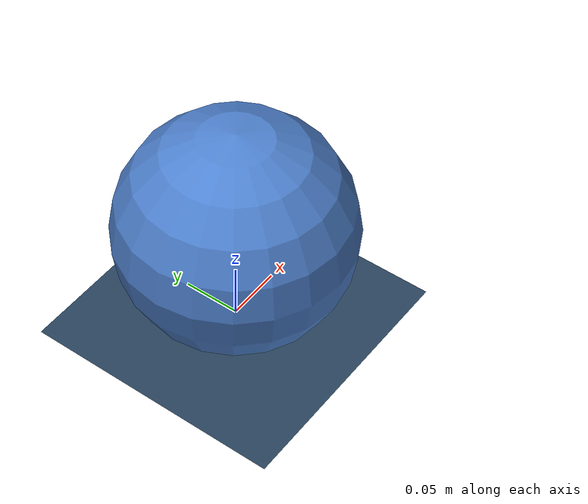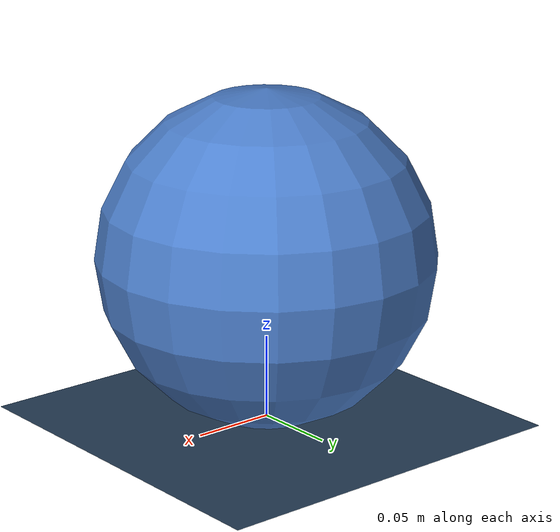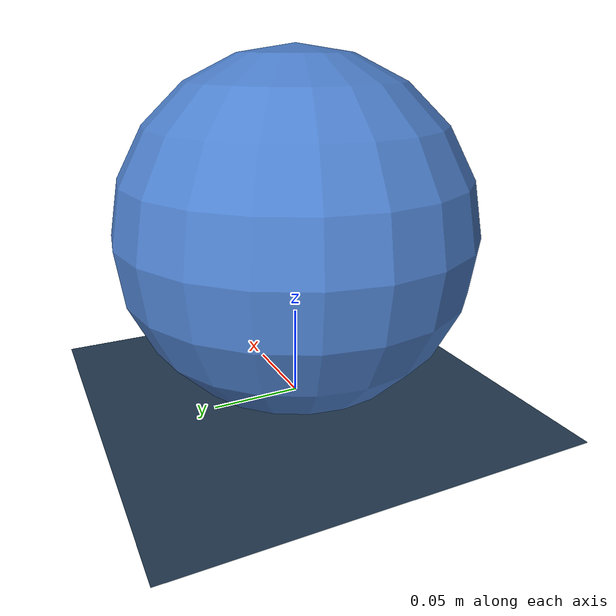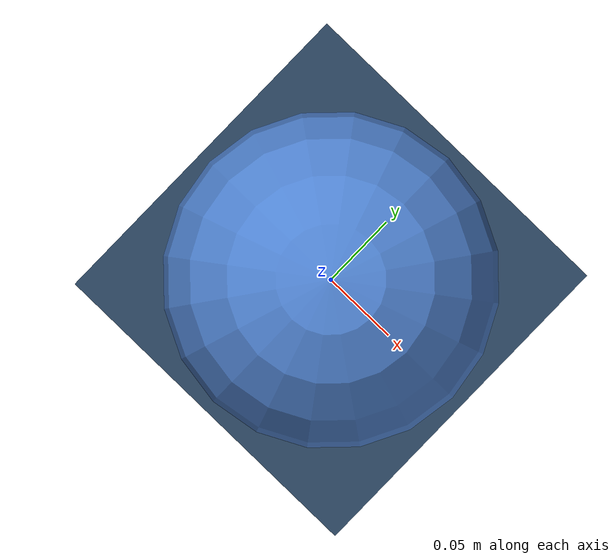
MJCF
<mujoco model="floating_cube">
    <compiler angle="radian" coordinate="local"/>

    <visual>
        <map znear="0.01" zfar="100"/>
        <global offwidth="800" offheight="600"/>
        <headlight ambient="1 1 1" diffuse="0.8 0.8 0.8" specular="0.5 0.5 0.5"/>
    </visual>
    <asset>
    <texture name="groundplane" type="2d" builtin="checker" rgb1="0.2 0.3 0.4"
            rgb2="0.1 0.2 0.3" mark="edge" markrgb="0.8 0.8 0.8" width="300" height="300"/>
    <material name="groundplane" texture="groundplane"
              texrepeat="5 5" texuniform="true" reflectance="0.0"/>
    <texture name='surface' file="general_block.png" gridsize="3 4" gridlayout=".U..LFRB.D.."/>
    <material name="obj_material" texture="surface" specular="5" shininess=".0"/>
     <texture name="skybox" type="skybox" builtin="flat" rgb1="0 0 0" rgb2="0 0 0" width="800" height="800"/>
    </asset>

    <worldbody>
        <!-- XYZ axis helpers -->
        <body name="floor" pos="0 0 0.0">
            <geom name="ground" type="plane" size="5 5 1" material="groundplane" friction="1.0 0.01 0.001" condim="6"/>
        </body>
        <body name="ball" pos="0 0 0.099">
            <!-- z-axis rotation only -->
            <joint name="ball_joint" type="hinge" axis="0 0 1"/>
            <!-- Ball geometry -->
            <geom type="sphere" size="0.1" rgba="0.3 0.5 0.8 1" density="1000" material="obj_material" friction="1.0 0.01 0.001" condim="6"/>
        </body>
    </worldbody>
</mujoco>
